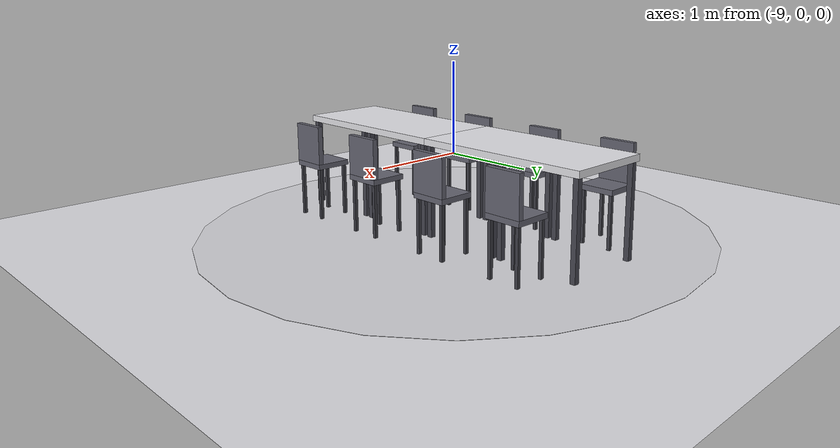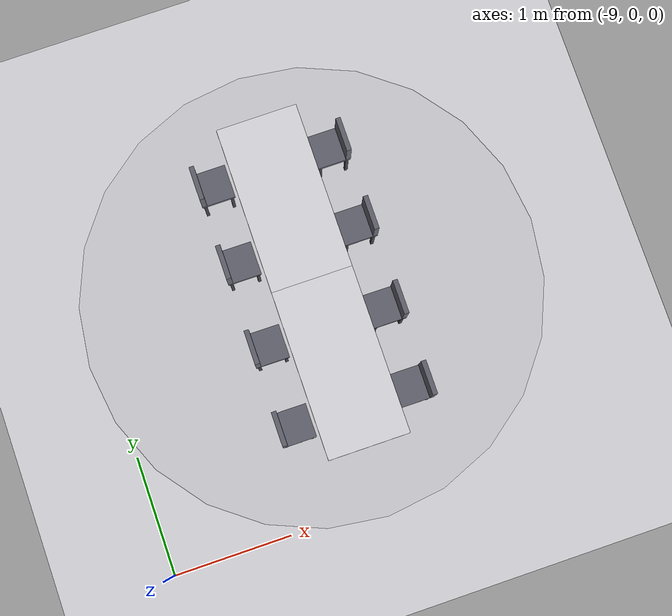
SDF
<sdf version="1.8">
 <world name="restaurant_blueprint_world">
  <model name="ground_plane">
   <static>true</static>
   <link name="link">
    <collision name="collision">
     <geometry><plane><normal>0 0 1</normal><size>120 120</size></plane></geometry>
    </collision>
    <visual name="visual">
     <geometry><plane><normal>0 0 1</normal><size>120 120</size></plane></geometry>
     <material>
      <ambient>0.88 0.88 0.90 1</ambient>
      <diffuse>0.88 0.88 0.90 1</diffuse>
      <specular>0.1 0.1 0.1 1</specular>
     </material>
    </visual>
   </link>
  </model>
  <model name="restaurant_boundary">
   <static>true</static>
   <link name="west_pillar_dining_row">
    <visual name="west_pillar_floor_disc_vis">
     <pose>-7.200 1.840 0.003 0 0 0</pose>
     <geometry><cylinder><radius>1.95</radius><length>0.002</length></cylinder></geometry>
     <material><ambient>0.84 0.84 0.86 1</ambient><diffuse>0.84 0.84 0.86 1</diffuse></material>
    </visual>
    <visual name="west_row_table_n_vis">
     <pose>-7.200 2.530 0.725 0.0000 0.0000 0.0000</pose>
     <geometry><box><size>0.67 1.38 0.05</size></box></geometry>
     <material><ambient>0.85 0.85 0.88 1</ambient><diffuse>0.90 0.90 0.92 1</diffuse></material>
    </visual>
    <visual name="west_row_table_n_leg_1_vis">
     <pose>-6.900 3.185 0.350 0 0 0.0000</pose>
     <geometry><box><size>0.04 0.04 0.70</size></box></geometry>
     <material><ambient>0.22 0.22 0.25 1</ambient><diffuse>0.28 0.28 0.32 1</diffuse></material>
    </visual>
    <visual name="west_row_table_n_leg_2_vis">
     <pose>-7.500 3.185 0.350 0 0 0.0000</pose>
     <geometry><box><size>0.04 0.04 0.70</size></box></geometry>
     <material><ambient>0.22 0.22 0.25 1</ambient><diffuse>0.28 0.28 0.32 1</diffuse></material>
    </visual>
    <visual name="west_row_table_n_leg_3_vis">
     <pose>-6.900 2.565 0.350 0 0 0.0000</pose>
     <geometry><box><size>0.04 0.04 0.70</size></box></geometry>
     <material><ambient>0.22 0.22 0.25 1</ambient><diffuse>0.28 0.28 0.32 1</diffuse></material>
    </visual>
    <visual name="west_row_table_n_leg_4_vis">
     <pose>-7.500 2.565 0.350 0 0 0.0000</pose>
     <geometry><box><size>0.04 0.04 0.70</size></box></geometry>
     <material><ambient>0.22 0.22 0.25 1</ambient><diffuse>0.28 0.28 0.32 1</diffuse></material>
    </visual>
    <visual name="west_row_table_n_leg_5_vis">
     <pose>-6.900 2.495 0.350 0 0 0.0000</pose>
     <geometry><box><size>0.04 0.04 0.70</size></box></geometry>
     <material><ambient>0.22 0.22 0.25 1</ambient><diffuse>0.28 0.28 0.32 1</diffuse></material>
    </visual>
    <visual name="west_row_table_n_leg_6_vis">
     <pose>-7.500 2.495 0.350 0 0 0.0000</pose>
     <geometry><box><size>0.04 0.04 0.70</size></box></geometry>
     <material><ambient>0.22 0.22 0.25 1</ambient><diffuse>0.28 0.28 0.32 1</diffuse></material>
    </visual>
    <visual name="west_row_table_n_leg_7_vis">
     <pose>-6.900 1.875 0.350 0 0 0.0000</pose>
     <geometry><box><size>0.04 0.04 0.70</size></box></geometry>
     <material><ambient>0.22 0.22 0.25 1</ambient><diffuse>0.28 0.28 0.32 1</diffuse></material>
    </visual>
    <visual name="west_row_table_n_leg_8_vis">
     <pose>-7.500 1.875 0.350 0 0 0.0000</pose>
     <geometry><box><size>0.04 0.04 0.70</size></box></geometry>
     <material><ambient>0.22 0.22 0.25 1</ambient><diffuse>0.28 0.28 0.32 1</diffuse></material>
    </visual>
    <collision name="west_row_table_n_col">
     <pose>-7.200 2.530 0.725 0.0000 0.0000 0.0000</pose>
     <geometry><box><size>0.67 1.38 0.05</size></box></geometry>
    </collision>
    <collision name="west_row_table_n_leg_1_col">
     <pose>-6.900 3.185 0.350 0 0 0.0000</pose>
     <geometry><box><size>0.04 0.04 0.70</size></box></geometry>
    </collision>
    <collision name="west_row_table_n_leg_2_col">
     <pose>-7.500 3.185 0.350 0 0 0.0000</pose>
     <geometry><box><size>0.04 0.04 0.70</size></box></geometry>
    </collision>
    <collision name="west_row_table_n_leg_3_col">
     <pose>-6.900 2.565 0.350 0 0 0.0000</pose>
     <geometry><box><size>0.04 0.04 0.70</size></box></geometry>
    </collision>
    <collision name="west_row_table_n_leg_4_col">
     <pose>-7.500 2.565 0.350 0 0 0.0000</pose>
     <geometry><box><size>0.04 0.04 0.70</size></box></geometry>
    </collision>
    <collision name="west_row_table_n_leg_5_col">
     <pose>-6.900 2.495 0.350 0 0 0.0000</pose>
     <geometry><box><size>0.04 0.04 0.70</size></box></geometry>
    </collision>
    <collision name="west_row_table_n_leg_6_col">
     <pose>-7.500 2.495 0.350 0 0 0.0000</pose>
     <geometry><box><size>0.04 0.04 0.70</size></box></geometry>
    </collision>
    <collision name="west_row_table_n_leg_7_col">
     <pose>-6.900 1.875 0.350 0 0 0.0000</pose>
     <geometry><box><size>0.04 0.04 0.70</size></box></geometry>
    </collision>
    <collision name="west_row_table_n_leg_8_col">
     <pose>-7.500 1.875 0.350 0 0 0.0000</pose>
     <geometry><box><size>0.04 0.04 0.70</size></box></geometry>
    </collision>
    <visual name="west_row_chair_n_w1_seat_vis">
     <pose>-7.696 2.865 0.430 0.0000 0.0000 0.0000</pose>
     <geometry><box><size>0.28 0.28 0.04</size></box></geometry>
     <material><ambient>0.30 0.30 0.33 1</ambient><diffuse>0.40 0.40 0.45 1</diffuse></material>
    </visual>
    <visual name="west_row_chair_n_w1_back_vis">
     <pose>-7.816 2.865 0.600 0 0 0.0000</pose>
     <geometry><box><size>0.04 0.28 0.30</size></box></geometry>
     <material><ambient>0.30 0.30 0.33 1</ambient><diffuse>0.40 0.40 0.45 1</diffuse></material>
    </visual>
    <visual name="west_row_chair_n_w1_leg_1_vis">
     <pose>-7.581 2.980 0.205 0 0 0.0000</pose>
     <geometry><box><size>0.025 0.025 0.41</size></box></geometry>
     <material><ambient>0.20 0.20 0.22 1</ambient><diffuse>0.25 0.25 0.28 1</diffuse></material>
    </visual>
    <visual name="west_row_chair_n_w1_leg_2_vis">
     <pose>-7.811 2.980 0.205 0 0 0.0000</pose>
     <geometry><box><size>0.025 0.025 0.41</size></box></geometry>
     <material><ambient>0.20 0.20 0.22 1</ambient><diffuse>0.25 0.25 0.28 1</diffuse></material>
    </visual>
    <visual name="west_row_chair_n_w1_leg_3_vis">
     <pose>-7.581 2.750 0.205 0 0 0.0000</pose>
     <geometry><box><size>0.025 0.025 0.41</size></box></geometry>
     <material><ambient>0.20 0.20 0.22 1</ambient><diffuse>0.25 0.25 0.28 1</diffuse></material>
    </visual>
    <visual name="west_row_chair_n_w1_leg_4_vis">
     <pose>-7.811 2.750 0.205 0 0 0.0000</pose>
     <geometry><box><size>0.025 0.025 0.41</size></box></geometry>
     <material><ambient>0.20 0.20 0.22 1</ambient><diffuse>0.25 0.25 0.28 1</diffuse></material>
    </visual>
    <collision name="west_row_chair_n_w1_seat_col">
     <pose>-7.696 2.865 0.430 0.0000 0.0000 0.0000</pose>
     <geometry><box><size>0.28 0.28 0.04</size></box></geometry>
    </collision>
    <collision name="west_row_chair_n_w1_back_col">
     <pose>-7.816 2.865 0.600 0 0 0.0000</pose>
     <geometry><box><size>0.04 0.28 0.30</size></box></geometry>
    </collision>
    <collision name="west_row_chair_n_w1_leg_1_col">
     <pose>-7.581 2.980 0.205 0 0 0.0000</pose>
     <geometry><box><size>0.025 0.025 0.41</size></box></geometry>
    </collision>
    <collision name="west_row_chair_n_w1_leg_2_col">
     <pose>-7.811 2.980 0.205 0 0 0.0000</pose>
     <geometry><box><size>0.025 0.025 0.41</size></box></geometry>
    </collision>
    <collision name="west_row_chair_n_w1_leg_3_col">
     <pose>-7.581 2.750 0.205 0 0 0.0000</pose>
     <geometry><box><size>0.025 0.025 0.41</size></box></geometry>
    </collision>
    <collision name="west_row_chair_n_w1_leg_4_col">
     <pose>-7.811 2.750 0.205 0 0 0.0000</pose>
     <geometry><box><size>0.025 0.025 0.41</size></box></geometry>
    </collision>
    <visual name="west_row_chair_n_w2_seat_vis">
     <pose>-7.696 2.195 0.430 0.0000 0.0000 0.0000</pose>
     <geometry><box><size>0.28 0.28 0.04</size></box></geometry>
     <material><ambient>0.30 0.30 0.33 1</ambient><diffuse>0.40 0.40 0.45 1</diffuse></material>
    </visual>
    <visual name="west_row_chair_n_w2_back_vis">
     <pose>-7.816 2.195 0.600 0 0 0.0000</pose>
     <geometry><box><size>0.04 0.28 0.30</size></box></geometry>
     <material><ambient>0.30 0.30 0.33 1</ambient><diffuse>0.40 0.40 0.45 1</diffuse></material>
    </visual>
    <visual name="west_row_chair_n_w2_leg_1_vis">
     <pose>-7.581 2.310 0.205 0 0 0.0000</pose>
     <geometry><box><size>0.025 0.025 0.41</size></box></geometry>
     <material><ambient>0.20 0.20 0.22 1</ambient><diffuse>0.25 0.25 0.28 1</diffuse></material>
    </visual>
    <visual name="west_row_chair_n_w2_leg_2_vis">
     <pose>-7.811 2.310 0.205 0 0 0.0000</pose>
     <geometry><box><size>0.025 0.025 0.41</size></box></geometry>
     <material><ambient>0.20 0.20 0.22 1</ambient><diffuse>0.25 0.25 0.28 1</diffuse></material>
    </visual>
    <visual name="west_row_chair_n_w2_leg_3_vis">
     <pose>-7.581 2.080 0.205 0 0 0.0000</pose>
     <geometry><box><size>0.025 0.025 0.41</size></box></geometry>
     <material><ambient>0.20 0.20 0.22 1</ambient><diffuse>0.25 0.25 0.28 1</diffuse></material>
    </visual>
    <visual name="west_row_chair_n_w2_leg_4_vis">
     <pose>-7.811 2.080 0.205 0 0 0.0000</pose>
     <geometry><box><size>0.025 0.025 0.41</size></box></geometry>
     <material><ambient>0.20 0.20 0.22 1</ambient><diffuse>0.25 0.25 0.28 1</diffuse></material>
    </visual>
    <collision name="west_row_chair_n_w2_seat_col">
     <pose>-7.696 2.195 0.430 0.0000 0.0000 0.0000</pose>
     <geometry><box><size>0.28 0.28 0.04</size></box></geometry>
    </collision>
    <collision name="west_row_chair_n_w2_back_col">
     <pose>-7.816 2.195 0.600 0 0 0.0000</pose>
     <geometry><box><size>0.04 0.28 0.30</size></box></geometry>
    </collision>
    <collision name="west_row_chair_n_w2_leg_1_col">
     <pose>-7.581 2.310 0.205 0 0 0.0000</pose>
     <geometry><box><size>0.025 0.025 0.41</size></box></geometry>
    </collision>
    <collision name="west_row_chair_n_w2_leg_2_col">
     <pose>-7.811 2.310 0.205 0 0 0.0000</pose>
     <geometry><box><size>0.025 0.025 0.41</size></box></geometry>
    </collision>
    <collision name="west_row_chair_n_w2_leg_3_col">
     <pose>-7.581 2.080 0.205 0 0 0.0000</pose>
     <geometry><box><size>0.025 0.025 0.41</size></box></geometry>
    </collision>
    <collision name="west_row_chair_n_w2_leg_4_col">
     <pose>-7.811 2.080 0.205 0 0 0.0000</pose>
     <geometry><box><size>0.025 0.025 0.41</size></box></geometry>
    </collision>
    <visual name="west_row_chair_n_e1_seat_vis">
     <pose>-6.704 2.865 0.430 0.0000 0.0000 0.0000</pose>
     <geometry><box><size>0.28 0.28 0.04</size></box></geometry>
     <material><ambient>0.30 0.30 0.33 1</ambient><diffuse>0.40 0.40 0.45 1</diffuse></material>
    </visual>
    <visual name="west_row_chair_n_e1_back_vis">
     <pose>-6.584 2.865 0.600 0 0 0.0000</pose>
     <geometry><box><size>0.04 0.28 0.30</size></box></geometry>
     <material><ambient>0.30 0.30 0.33 1</ambient><diffuse>0.40 0.40 0.45 1</diffuse></material>
    </visual>
    <visual name="west_row_chair_n_e1_leg_1_vis">
     <pose>-6.589 2.980 0.205 0 0 0.0000</pose>
     <geometry><box><size>0.025 0.025 0.41</size></box></geometry>
     <material><ambient>0.20 0.20 0.22 1</ambient><diffuse>0.25 0.25 0.28 1</diffuse></material>
    </visual>
    <visual name="west_row_chair_n_e1_leg_2_vis">
     <pose>-6.819 2.980 0.205 0 0 0.0000</pose>
     <geometry><box><size>0.025 0.025 0.41</size></box></geometry>
     <material><ambient>0.20 0.20 0.22 1</ambient><diffuse>0.25 0.25 0.28 1</diffuse></material>
    </visual>
    <visual name="west_row_chair_n_e1_leg_3_vis">
     <pose>-6.589 2.750 0.205 0 0 0.0000</pose>
     <geometry><box><size>0.025 0.025 0.41</size></box></geometry>
     <material><ambient>0.20 0.20 0.22 1</ambient><diffuse>0.25 0.25 0.28 1</diffuse></material>
    </visual>
    <visual name="west_row_chair_n_e1_leg_4_vis">
     <pose>-6.819 2.750 0.205 0 0 0.0000</pose>
     <geometry><box><size>0.025 0.025 0.41</size></box></geometry>
     <material><ambient>0.20 0.20 0.22 1</ambient><diffuse>0.25 0.25 0.28 1</diffuse></material>
    </visual>
    <collision name="west_row_chair_n_e1_seat_col">
     <pose>-6.704 2.865 0.430 0.0000 0.0000 0.0000</pose>
     <geometry><box><size>0.28 0.28 0.04</size></box></geometry>
    </collision>
    <collision name="west_row_chair_n_e1_back_col">
     <pose>-6.584 2.865 0.600 0 0 0.0000</pose>
     <geometry><box><size>0.04 0.28 0.30</size></box></geometry>
    </collision>
    <collision name="west_row_chair_n_e1_leg_1_col">
     <pose>-6.589 2.980 0.205 0 0 0.0000</pose>
     <geometry><box><size>0.025 0.025 0.41</size></box></geometry>
    </collision>
    <collision name="west_row_chair_n_e1_leg_2_col">
     <pose>-6.819 2.980 0.205 0 0 0.0000</pose>
     <geometry><box><size>0.025 0.025 0.41</size></box></geometry>
    </collision>
    <collision name="west_row_chair_n_e1_leg_3_col">
     <pose>-6.589 2.750 0.205 0 0 0.0000</pose>
     <geometry><box><size>0.025 0.025 0.41</size></box></geometry>
    </collision>
    <collision name="west_row_chair_n_e1_leg_4_col">
     <pose>-6.819 2.750 0.205 0 0 0.0000</pose>
     <geometry><box><size>0.025 0.025 0.41</size></box></geometry>
    </collision>
    <visual name="west_row_chair_n_e2_seat_vis">
     <pose>-6.704 2.195 0.430 0.0000 0.0000 0.0000</pose>
     <geometry><box><size>0.28 0.28 0.04</size></box></geometry>
     <material><ambient>0.30 0.30 0.33 1</ambient><diffuse>0.40 0.40 0.45 1</diffuse></material>
    </visual>
    <visual name="west_row_chair_n_e2_back_vis">
     <pose>-6.584 2.195 0.600 0 0 0.0000</pose>
     <geometry><box><size>0.04 0.28 0.30</size></box></geometry>
     <material><ambient>0.30 0.30 0.33 1</ambient><diffuse>0.40 0.40 0.45 1</diffuse></material>
    </visual>
    <visual name="west_row_chair_n_e2_leg_1_vis">
     <pose>-6.589 2.310 0.205 0 0 0.0000</pose>
     <geometry><box><size>0.025 0.025 0.41</size></box></geometry>
     <material><ambient>0.20 0.20 0.22 1</ambient><diffuse>0.25 0.25 0.28 1</diffuse></material>
    </visual>
    <visual name="west_row_chair_n_e2_leg_2_vis">
     <pose>-6.819 2.310 0.205 0 0 0.0000</pose>
     <geometry><box><size>0.025 0.025 0.41</size></box></geometry>
     <material><ambient>0.20 0.20 0.22 1</ambient><diffuse>0.25 0.25 0.28 1</diffuse></material>
    </visual>
    <visual name="west_row_chair_n_e2_leg_3_vis">
     <pose>-6.589 2.080 0.205 0 0 0.0000</pose>
     <geometry><box><size>0.025 0.025 0.41</size></box></geometry>
     <material><ambient>0.20 0.20 0.22 1</ambient><diffuse>0.25 0.25 0.28 1</diffuse></material>
    </visual>
    <visual name="west_row_chair_n_e2_leg_4_vis">
     <pose>-6.819 2.080 0.205 0 0 0.0000</pose>
     <geometry><box><size>0.025 0.025 0.41</size></box></geometry>
     <material><ambient>0.20 0.20 0.22 1</ambient><diffuse>0.25 0.25 0.28 1</diffuse></material>
    </visual>
    <collision name="west_row_chair_n_e2_seat_col">
     <pose>-6.704 2.195 0.430 0.0000 0.0000 0.0000</pose>
     <geometry><box><size>0.28 0.28 0.04</size></box></geometry>
    </collision>
    <collision name="west_row_chair_n_e2_back_col">
     <pose>-6.584 2.195 0.600 0 0 0.0000</pose>
     <geometry><box><size>0.04 0.28 0.30</size></box></geometry>
    </collision>
    <collision name="west_row_chair_n_e2_leg_1_col">
     <pose>-6.589 2.310 0.205 0 0 0.0000</pose>
     <geometry><box><size>0.025 0.025 0.41</size></box></geometry>
    </collision>
    <collision name="west_row_chair_n_e2_leg_2_col">
     <pose>-6.819 2.310 0.205 0 0 0.0000</pose>
     <geometry><box><size>0.025 0.025 0.41</size></box></geometry>
    </collision>
    <collision name="west_row_chair_n_e2_leg_3_col">
     <pose>-6.589 2.080 0.205 0 0 0.0000</pose>
     <geometry><box><size>0.025 0.025 0.41</size></box></geometry>
    </collision>
    <collision name="west_row_chair_n_e2_leg_4_col">
     <pose>-6.819 2.080 0.205 0 0 0.0000</pose>
     <geometry><box><size>0.025 0.025 0.41</size></box></geometry>
    </collision>
    <visual name="west_row_table_s_vis">
     <pose>-7.200 1.150 0.725 0.0000 0.0000 0.0000</pose>
     <geometry><box><size>0.67 1.38 0.05</size></box></geometry>
     <material><ambient>0.85 0.85 0.88 1</ambient><diffuse>0.90 0.90 0.92 1</diffuse></material>
    </visual>
    <visual name="west_row_table_s_leg_1_vis">
     <pose>-6.900 1.805 0.350 0 0 0.0000</pose>
     <geometry><box><size>0.04 0.04 0.70</size></box></geometry>
     <material><ambient>0.22 0.22 0.25 1</ambient><diffuse>0.28 0.28 0.32 1</diffuse></material>
    </visual>
    <visual name="west_row_table_s_leg_2_vis">
     <pose>-7.500 1.805 0.350 0 0 0.0000</pose>
     <geometry><box><size>0.04 0.04 0.70</size></box></geometry>
     <material><ambient>0.22 0.22 0.25 1</ambient><diffuse>0.28 0.28 0.32 1</diffuse></material>
    </visual>
    <visual name="west_row_table_s_leg_3_vis">
     <pose>-6.900 1.185 0.350 0 0 0.0000</pose>
     <geometry><box><size>0.04 0.04 0.70</size></box></geometry>
     <material><ambient>0.22 0.22 0.25 1</ambient><diffuse>0.28 0.28 0.32 1</diffuse></material>
    </visual>
    <visual name="west_row_table_s_leg_4_vis">
     <pose>-7.500 1.185 0.350 0 0 0.0000</pose>
     <geometry><box><size>0.04 0.04 0.70</size></box></geometry>
     <material><ambient>0.22 0.22 0.25 1</ambient><diffuse>0.28 0.28 0.32 1</diffuse></material>
    </visual>
    <visual name="west_row_table_s_leg_5_vis">
     <pose>-6.900 1.115 0.350 0 0 0.0000</pose>
     <geometry><box><size>0.04 0.04 0.70</size></box></geometry>
     <material><ambient>0.22 0.22 0.25 1</ambient><diffuse>0.28 0.28 0.32 1</diffuse></material>
    </visual>
    <visual name="west_row_table_s_leg_6_vis">
     <pose>-7.500 1.115 0.350 0 0 0.0000</pose>
     <geometry><box><size>0.04 0.04 0.70</size></box></geometry>
     <material><ambient>0.22 0.22 0.25 1</ambient><diffuse>0.28 0.28 0.32 1</diffuse></material>
    </visual>
    <visual name="west_row_table_s_leg_7_vis">
     <pose>-6.900 0.495 0.350 0 0 0.0000</pose>
     <geometry><box><size>0.04 0.04 0.70</size></box></geometry>
     <material><ambient>0.22 0.22 0.25 1</ambient><diffuse>0.28 0.28 0.32 1</diffuse></material>
    </visual>
    <visual name="west_row_table_s_leg_8_vis">
     <pose>-7.500 0.495 0.350 0 0 0.0000</pose>
     <geometry><box><size>0.04 0.04 0.70</size></box></geometry>
     <material><ambient>0.22 0.22 0.25 1</ambient><diffuse>0.28 0.28 0.32 1</diffuse></material>
    </visual>
    <collision name="west_row_table_s_col">
     <pose>-7.200 1.150 0.725 0.0000 0.0000 0.0000</pose>
     <geometry><box><size>0.67 1.38 0.05</size></box></geometry>
    </collision>
    <collision name="west_row_table_s_leg_1_col">
     <pose>-6.900 1.805 0.350 0 0 0.0000</pose>
     <geometry><box><size>0.04 0.04 0.70</size></box></geometry>
    </collision>
    <collision name="west_row_table_s_leg_2_col">
     <pose>-7.500 1.805 0.350 0 0 0.0000</pose>
     <geometry><box><size>0.04 0.04 0.70</size></box></geometry>
    </collision>
    <collision name="west_row_table_s_leg_3_col">
     <pose>-6.900 1.185 0.350 0 0 0.0000</pose>
     <geometry><box><size>0.04 0.04 0.70</size></box></geometry>
    </collision>
    <collision name="west_row_table_s_leg_4_col">
     <pose>-7.500 1.185 0.350 0 0 0.0000</pose>
     <geometry><box><size>0.04 0.04 0.70</size></box></geometry>
    </collision>
    <collision name="west_row_table_s_leg_5_col">
     <pose>-6.900 1.115 0.350 0 0 0.0000</pose>
     <geometry><box><size>0.04 0.04 0.70</size></box></geometry>
    </collision>
    <collision name="west_row_table_s_leg_6_col">
     <pose>-7.500 1.115 0.350 0 0 0.0000</pose>
     <geometry><box><size>0.04 0.04 0.70</size></box></geometry>
    </collision>
    <collision name="west_row_table_s_leg_7_col">
     <pose>-6.900 0.495 0.350 0 0 0.0000</pose>
     <geometry><box><size>0.04 0.04 0.70</size></box></geometry>
    </collision>
    <collision name="west_row_table_s_leg_8_col">
     <pose>-7.500 0.495 0.350 0 0 0.0000</pose>
     <geometry><box><size>0.04 0.04 0.70</size></box></geometry>
    </collision>
    <visual name="west_row_chair_s_w1_seat_vis">
     <pose>-7.696 1.485 0.430 0.0000 0.0000 0.0000</pose>
     <geometry><box><size>0.28 0.28 0.04</size></box></geometry>
     <material><ambient>0.30 0.30 0.33 1</ambient><diffuse>0.40 0.40 0.45 1</diffuse></material>
    </visual>
    <visual name="west_row_chair_s_w1_back_vis">
     <pose>-7.816 1.485 0.600 0 0 0.0000</pose>
     <geometry><box><size>0.04 0.28 0.30</size></box></geometry>
     <material><ambient>0.30 0.30 0.33 1</ambient><diffuse>0.40 0.40 0.45 1</diffuse></material>
    </visual>
    <visual name="west_row_chair_s_w1_leg_1_vis">
     <pose>-7.581 1.600 0.205 0 0 0.0000</pose>
     <geometry><box><size>0.025 0.025 0.41</size></box></geometry>
     <material><ambient>0.20 0.20 0.22 1</ambient><diffuse>0.25 0.25 0.28 1</diffuse></material>
    </visual>
    <visual name="west_row_chair_s_w1_leg_2_vis">
     <pose>-7.811 1.600 0.205 0 0 0.0000</pose>
     <geometry><box><size>0.025 0.025 0.41</size></box></geometry>
     <material><ambient>0.20 0.20 0.22 1</ambient><diffuse>0.25 0.25 0.28 1</diffuse></material>
    </visual>
    <visual name="west_row_chair_s_w1_leg_3_vis">
     <pose>-7.581 1.370 0.205 0 0 0.0000</pose>
     <geometry><box><size>0.025 0.025 0.41</size></box></geometry>
     <material><ambient>0.20 0.20 0.22 1</ambient><diffuse>0.25 0.25 0.28 1</diffuse></material>
    </visual>
    <visual name="west_row_chair_s_w1_leg_4_vis">
     <pose>-7.811 1.370 0.205 0 0 0.0000</pose>
     <geometry><box><size>0.025 0.025 0.41</size></box></geometry>
     <material><ambient>0.20 0.20 0.22 1</ambient><diffuse>0.25 0.25 0.28 1</diffuse></material>
    </visual>
    <collision name="west_row_chair_s_w1_seat_col">
     <pose>-7.696 1.485 0.430 0.0000 0.0000 0.0000</pose>
     <geometry><box><size>0.28 0.28 0.04</size></box></geometry>
    </collision>
    <collision name="west_row_chair_s_w1_back_col">
     <pose>-7.816 1.485 0.600 0 0 0.0000</pose>
     <geometry><box><size>0.04 0.28 0.30</size></box></geometry>
    </collision>
    <collision name="west_row_chair_s_w1_leg_1_col">
     <pose>-7.581 1.600 0.205 0 0 0.0000</pose>
     <geometry><box><size>0.025 0.025 0.41</size></box></geometry>
    </collision>
    <collision name="west_row_chair_s_w1_leg_2_col">
     <pose>-7.811 1.600 0.205 0 0 0.0000</pose>
     <geometry><box><size>0.025 0.025 0.41</size></box></geometry>
    </collision>
    <collision name="west_row_chair_s_w1_leg_3_col">
     <pose>-7.581 1.370 0.205 0 0 0.0000</pose>
     <geometry><box><size>0.025 0.025 0.41</size></box></geometry>
    </collision>
    <collision name="west_row_chair_s_w1_leg_4_col">
     <pose>-7.811 1.370 0.205 0 0 0.0000</pose>
     <geometry><box><size>0.025 0.025 0.41</size></box></geometry>
    </collision>
    <visual name="west_row_chair_s_w2_seat_vis">
     <pose>-7.696 0.815 0.430 0.0000 0.0000 0.0000</pose>
     <geometry><box><size>0.28 0.28 0.04</size></box></geometry>
     <material><ambient>0.30 0.30 0.33 1</ambient><diffuse>0.40 0.40 0.45 1</diffuse></material>
    </visual>
    <visual name="west_row_chair_s_w2_back_vis">
     <pose>-7.816 0.815 0.600 0 0 0.0000</pose>
     <geometry><box><size>0.04 0.28 0.30</size></box></geometry>
     <material><ambient>0.30 0.30 0.33 1</ambient><diffuse>0.40 0.40 0.45 1</diffuse></material>
    </visual>
    <visual name="west_row_chair_s_w2_leg_1_vis">
     <pose>-7.581 0.930 0.205 0 0 0.0000</pose>
     <geometry><box><size>0.025 0.025 0.41</size></box></geometry>
     <material><ambient>0.20 0.20 0.22 1</ambient><diffuse>0.25 0.25 0.28 1</diffuse></material>
    </visual>
    <visual name="west_row_chair_s_w2_leg_2_vis">
     <pose>-7.811 0.930 0.205 0 0 0.0000</pose>
     <geometry><box><size>0.025 0.025 0.41</size></box></geometry>
     <material><ambient>0.20 0.20 0.22 1</ambient><diffuse>0.25 0.25 0.28 1</diffuse></material>
    </visual>
    <visual name="west_row_chair_s_w2_leg_3_vis">
     <pose>-7.581 0.700 0.205 0 0 0.0000</pose>
     <geometry><box><size>0.025 0.025 0.41</size></box></geometry>
     <material><ambient>0.20 0.20 0.22 1</ambient><diffuse>0.25 0.25 0.28 1</diffuse></material>
    </visual>
    <visual name="west_row_chair_s_w2_leg_4_vis">
     <pose>-7.811 0.700 0.205 0 0 0.0000</pose>
     <geometry><box><size>0.025 0.025 0.41</size></box></geometry>
     <material><ambient>0.20 0.20 0.22 1</ambient><diffuse>0.25 0.25 0.28 1</diffuse></material>
    </visual>
    <collision name="west_row_chair_s_w2_seat_col">
     <pose>-7.696 0.815 0.430 0.0000 0.0000 0.0000</pose>
     <geometry><box><size>0.28 0.28 0.04</size></box></geometry>
    </collision>
    <collision name="west_row_chair_s_w2_back_col">
     <pose>-7.816 0.815 0.600 0 0 0.0000</pose>
     <geometry><box><size>0.04 0.28 0.30</size></box></geometry>
    </collision>
    <collision name="west_row_chair_s_w2_leg_1_col">
     <pose>-7.581 0.930 0.205 0 0 0.0000</pose>
     <geometry><box><size>0.025 0.025 0.41</size></box></geometry>
    </collision>
    <collision name="west_row_chair_s_w2_leg_2_col">
     <pose>-7.811 0.930 0.205 0 0 0.0000</pose>
     <geometry><box><size>0.025 0.025 0.41</size></box></geometry>
    </collision>
    <collision name="west_row_chair_s_w2_leg_3_col">
     <pose>-7.581 0.700 0.205 0 0 0.0000</pose>
     <geometry><box><size>0.025 0.025 0.41</size></box></geometry>
    </collision>
    <collision name="west_row_chair_s_w2_leg_4_col">
     <pose>-7.811 0.700 0.205 0 0 0.0000</pose>
     <geometry><box><size>0.025 0.025 0.41</size></box></geometry>
    </collision>
    <visual name="west_row_chair_s_e1_seat_vis">
     <pose>-6.704 1.485 0.430 0.0000 0.0000 0.0000</pose>
     <geometry><box><size>0.28 0.28 0.04</size></box></geometry>
     <material><ambient>0.30 0.30 0.33 1</ambient><diffuse>0.40 0.40 0.45 1</diffuse></material>
    </visual>
    <visual name="west_row_chair_s_e1_back_vis">
     <pose>-6.584 1.485 0.600 0 0 0.0000</pose>
     <geometry><box><size>0.04 0.28 0.30</size></box></geometry>
     <material><ambient>0.30 0.30 0.33 1</ambient><diffuse>0.40 0.40 0.45 1</diffuse></material>
    </visual>
    <visual name="west_row_chair_s_e1_leg_1_vis">
     <pose>-6.589 1.600 0.205 0 0 0.0000</pose>
     <geometry><box><size>0.025 0.025 0.41</size></box></geometry>
     <material><ambient>0.20 0.20 0.22 1</ambient><diffuse>0.25 0.25 0.28 1</diffuse></material>
    </visual>
    <visual name="west_row_chair_s_e1_leg_2_vis">
     <pose>-6.819 1.600 0.205 0 0 0.0000</pose>
     <geometry><box><size>0.025 0.025 0.41</size></box></geometry>
     <material><ambient>0.20 0.20 0.22 1</ambient><diffuse>0.25 0.25 0.28 1</diffuse></material>
    </visual>
    <visual name="west_row_chair_s_e1_leg_3_vis">
     <pose>-6.589 1.370 0.205 0 0 0.0000</pose>
     <geometry><box><size>0.025 0.025 0.41</size></box></geometry>
     <material><ambient>0.20 0.20 0.22 1</ambient><diffuse>0.25 0.25 0.28 1</diffuse></material>
    </visual>
    <visual name="west_row_chair_s_e1_leg_4_vis">
     <pose>-6.819 1.370 0.205 0 0 0.0000</pose>
     <geometry><box><size>0.025 0.025 0.41</size></box></geometry>
     <material><ambient>0.20 0.20 0.22 1</ambient><diffuse>0.25 0.25 0.28 1</diffuse></material>
    </visual>
    <collision name="west_row_chair_s_e1_seat_col">
     <pose>-6.704 1.485 0.430 0.0000 0.0000 0.0000</pose>
     <geometry><box><size>0.28 0.28 0.04</size></box></geometry>
    </collision>
    <collision name="west_row_chair_s_e1_back_col">
     <pose>-6.584 1.485 0.600 0 0 0.0000</pose>
     <geometry><box><size>0.04 0.28 0.30</size></box></geometry>
    </collision>
    <collision name="west_row_chair_s_e1_leg_1_col">
     <pose>-6.589 1.600 0.205 0 0 0.0000</pose>
     <geometry><box><size>0.025 0.025 0.41</size></box></geometry>
    </collision>
    <collision name="west_row_chair_s_e1_leg_2_col">
     <pose>-6.819 1.600 0.205 0 0 0.0000</pose>
     <geometry><box><size>0.025 0.025 0.41</size></box></geometry>
    </collision>
    <collision name="west_row_chair_s_e1_leg_3_col">
     <pose>-6.589 1.370 0.205 0 0 0.0000</pose>
     <geometry><box><size>0.025 0.025 0.41</size></box></geometry>
    </collision>
    <collision name="west_row_chair_s_e1_leg_4_col">
     <pose>-6.819 1.370 0.205 0 0 0.0000</pose>
     <geometry><box><size>0.025 0.025 0.41</size></box></geometry>
    </collision>
    <visual name="west_row_chair_s_e2_seat_vis">
     <pose>-6.704 0.815 0.430 0.0000 0.0000 0.0000</pose>
     <geometry><box><size>0.28 0.28 0.04</size></box></geometry>
     <material><ambient>0.30 0.30 0.33 1</ambient><diffuse>0.40 0.40 0.45 1</diffuse></material>
    </visual>
    <visual name="west_row_chair_s_e2_back_vis">
     <pose>-6.584 0.815 0.600 0 0 0.0000</pose>
     <geometry><box><size>0.04 0.28 0.30</size></box></geometry>
     <material><ambient>0.30 0.30 0.33 1</ambient><diffuse>0.40 0.40 0.45 1</diffuse></material>
    </visual>
    <visual name="west_row_chair_s_e2_leg_1_vis">
     <pose>-6.589 0.930 0.205 0 0 0.0000</pose>
     <geometry><box><size>0.025 0.025 0.41</size></box></geometry>
     <material><ambient>0.20 0.20 0.22 1</ambient><diffuse>0.25 0.25 0.28 1</diffuse></material>
    </visual>
    <visual name="west_row_chair_s_e2_leg_2_vis">
     <pose>-6.819 0.930 0.205 0 0 0.0000</pose>
     <geometry><box><size>0.025 0.025 0.41</size></box></geometry>
     <material><ambient>0.20 0.20 0.22 1</ambient><diffuse>0.25 0.25 0.28 1</diffuse></material>
    </visual>
    <visual name="west_row_chair_s_e2_leg_3_vis">
     <pose>-6.589 0.700 0.205 0 0 0.0000</pose>
     <geometry><box><size>0.025 0.025 0.41</size></box></geometry>
     <material><ambient>0.20 0.20 0.22 1</ambient><diffuse>0.25 0.25 0.28 1</diffuse></material>
    </visual>
    <visual name="west_row_chair_s_e2_leg_4_vis">
     <pose>-6.819 0.700 0.205 0 0 0.0000</pose>
     <geometry><box><size>0.025 0.025 0.41</size></box></geometry>
     <material><ambient>0.20 0.20 0.22 1</ambient><diffuse>0.25 0.25 0.28 1</diffuse></material>
    </visual>
    <collision name="west_row_chair_s_e2_seat_col">
     <pose>-6.704 0.815 0.430 0.0000 0.0000 0.0000</pose>
     <geometry><box><size>0.28 0.28 0.04</size></box></geometry>
    </collision>
    <collision name="west_row_chair_s_e2_back_col">
     <pose>-6.584 0.815 0.600 0 0 0.0000</pose>
     <geometry><box><size>0.04 0.28 0.30</size></box></geometry>
    </collision>
    <collision name="west_row_chair_s_e2_leg_1_col">
     <pose>-6.589 0.930 0.205 0 0 0.0000</pose>
     <geometry><box><size>0.025 0.025 0.41</size></box></geometry>
    </collision>
    <collision name="west_row_chair_s_e2_leg_2_col">
     <pose>-6.819 0.930 0.205 0 0 0.0000</pose>
     <geometry><box><size>0.025 0.025 0.41</size></box></geometry>
    </collision>
    <collision name="west_row_chair_s_e2_leg_3_col">
     <pose>-6.589 0.700 0.205 0 0 0.0000</pose>
     <geometry><box><size>0.025 0.025 0.41</size></box></geometry>
    </collision>
    <collision name="west_row_chair_s_e2_leg_4_col">
     <pose>-6.819 0.700 0.205 0 0 0.0000</pose>
     <geometry><box><size>0.025 0.025 0.41</size></box></geometry>
    </collision>
   </link>
  </model>
 </world>
</sdf>
